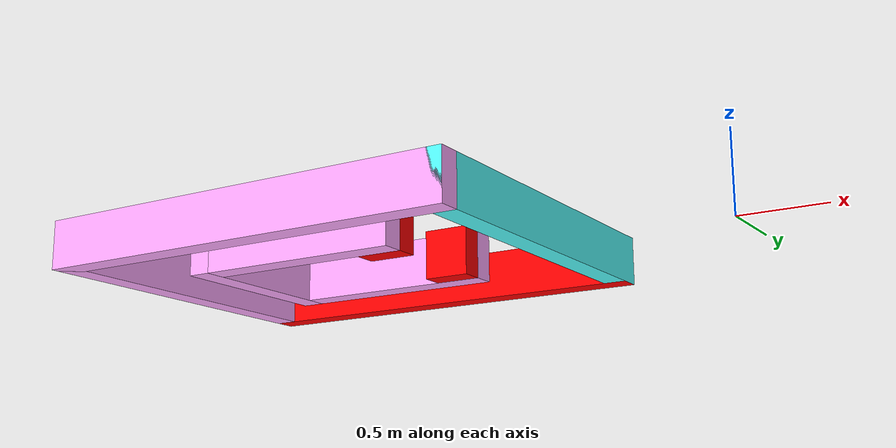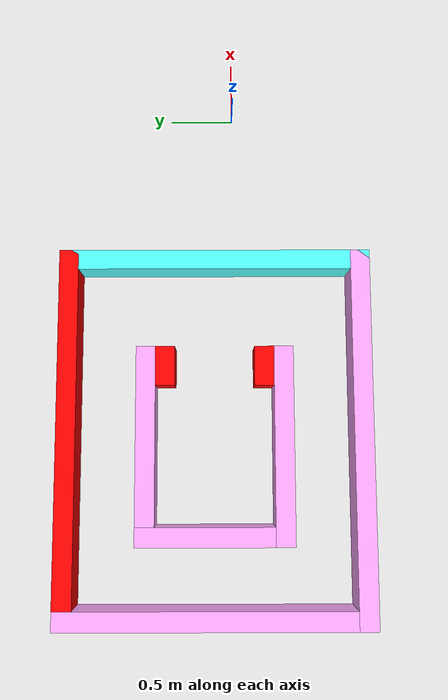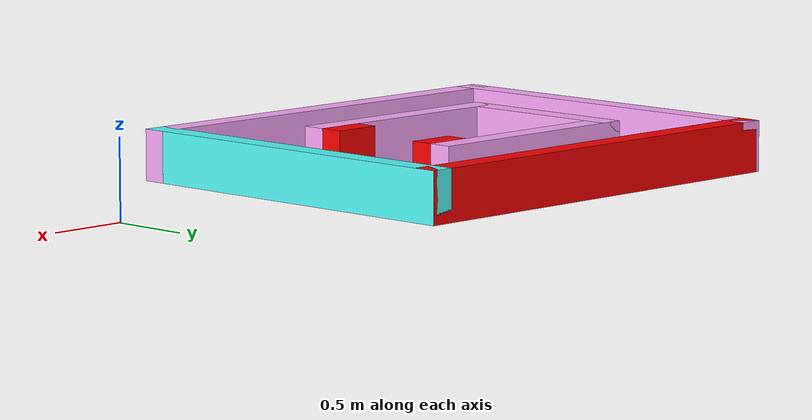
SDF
<?xml version='1.0'?>
<sdf version='1.6'>
  <model name='doll_maze'>
    <pose frame=''>-2.627 0.1445 0 0 -0 0</pose>
    <link name='Wall_0'>
      <collision name='Wall_0_Collision'>
        <geometry>
          <box>
            <size>2.896 0.15 0.32</size>
          </box>
        </geometry>
        <pose frame=''>0 0 0.16 0 -0 0</pose>
      </collision>
      <visual name='Wall_0_Visual'>
        <pose frame=''>0 0 0.16 0 -0 0</pose>
        <geometry>
          <box>
            <size>2.896 0.15 0.32</size>
          </box>
        </geometry>
        <material>
          <script>
            <uri>file://media/materials/scripts/gazebo.material</uri>
            <name>Gazebo/Grey</name>
          </script>
          <ambient>1 0.666667 1 1</ambient>
        </material>
      </visual>
      <pose frame=''>0 -1.1445 0 0 -0 0</pose>
    </link>
    <link name='Wall_11'>
      <collision name='Wall_11_Collision'>
        <geometry>
          <box>
            <size>1.524 0.15 0.32</size>
          </box>
        </geometry>
        <pose frame=''>0 0 0.16 0 -0 0</pose>
      </collision>
      <visual name='Wall_11_Visual'>
        <pose frame=''>0 0 0.16 0 -0 0</pose>
        <geometry>
          <box>
            <size>1.524 0.15 0.32</size>
          </box>
        </geometry>
        <material>
          <script>
            <uri>file://media/materials/scripts/gazebo.material</uri>
            <name>Gazebo/Grey</name>
          </script>
          <ambient>1 0.666667 1 1</ambient>
        </material>
      </visual>
      <pose frame=''>-0.076 0.5345 0 0 -0 0</pose>
    </link>
    <link name='Wall_13'>
      <collision name='Wall_13_Collision'>
        <geometry>
          <box>
            <size>1.524 0.15 0.32</size>
          </box>
        </geometry>
        <pose frame=''>0 0 0.16 0 -0 0</pose>
      </collision>
      <visual name='Wall_13_Visual'>
        <pose frame=''>0 0 0.16 0 -0 0</pose>
        <geometry>
          <box>
            <size>1.524 0.15 0.32</size>
          </box>
        </geometry>
        <material>
          <script>
            <uri>file://media/materials/scripts/gazebo.material</uri>
            <name>Gazebo/Grey</name>
          </script>
          <ambient>1 0.666667 1 1</ambient>
        </material>
      </visual>
      <pose frame=''>-0.076 -0.5345 0 0 -0 0</pose>
    </link>
    <link name='Wall_17'>
      <collision name='Wall_17_Collision'>
        <geometry>
          <box>
            <size>0.304 0.15 0.32</size>
          </box>
        </geometry>
        <pose frame=''>0 0 0.16 0 -0 0</pose>
      </collision>
      <visual name='Wall_17_Visual'>
        <pose frame=''>0 0 0.16 0 -0 0</pose>
        <geometry>
          <box>
            <size>0.304 0.15 0.32</size>
          </box>
        </geometry>
        <material>
          <script>
            <uri>file://media/materials/scripts/gazebo.material</uri>
            <name>Gazebo/Grey</name>
          </script>
          <ambient>1 0 0 1</ambient>
        </material>
      </visual>
      <pose frame=''>0.534 0.3845 0 0 -0 0</pose>
    </link>
    <link name='Wall_19'>
      <collision name='Wall_19_Collision'>
        <geometry>
          <box>
            <size>0.304 0.15 0.32</size>
          </box>
        </geometry>
        <pose frame=''>0 0 0.16 0 -0 0</pose>
      </collision>
      <visual name='Wall_19_Visual'>
        <pose frame=''>0 0 0.16 0 -0 0</pose>
        <geometry>
          <box>
            <size>0.304 0.15 0.32</size>
          </box>
        </geometry>
        <material>
          <script>
            <uri>file://media/materials/scripts/gazebo.material</uri>
            <name>Gazebo/Grey</name>
          </script>
          <ambient>1 0 0 1</ambient>
        </material>
      </visual>
      <pose frame=''>0.534 -0.3845 0 0 -0 0</pose>
    </link>
    <link name='Wall_2'>
      <collision name='Wall_2_Collision'>
        <geometry>
          <box>
            <size>2.896 0.15 0.32</size>
          </box>
        </geometry>
        <pose frame=''>0 0 0.16 0 -0 0</pose>
      </collision>
      <visual name='Wall_2_Visual'>
        <pose frame=''>0 0 0.16 0 -0 0</pose>
        <geometry>
          <box>
            <size>2.896 0.15 0.32</size>
          </box>
        </geometry>
        <material>
          <script>
            <uri>file://media/materials/scripts/gazebo.material</uri>
            <name>Gazebo/Grey</name>
          </script>
          <ambient>1 0 0 1</ambient>
        </material>
      </visual>
      <pose frame=''>0 1.1445 0 0 -0 0</pose>
    </link>
    <link name='Wall_5'>
      <collision name='Wall_5_Collision'>
        <geometry>
          <box>
            <size>2.439 0.15 0.32</size>
          </box>
        </geometry>
        <pose frame=''>0 0 0.16 0 -0 0</pose>
      </collision>
      <visual name='Wall_5_Visual'>
        <pose frame=''>0 0 0.16 0 -0 0</pose>
        <geometry>
          <box>
            <size>2.439 0.15 0.32</size>
          </box>
        </geometry>
        <material>
          <script>
            <uri>file://media/materials/scripts/gazebo.material</uri>
            <name>Gazebo/Grey</name>
          </script>
          <ambient>1 0.666667 1 1</ambient>
        </material>
      </visual>
      <pose frame=''>-1.373 0 0 0 0 -1.5708</pose>
    </link>
    <link name='Wall_7'>
      <collision name='Wall_7_Collision'>
        <geometry>
          <box>
            <size>2.439 0.15 0.32</size>
          </box>
        </geometry>
        <pose frame=''>0 0 0.16 0 -0 0</pose>
      </collision>
      <visual name='Wall_7_Visual'>
        <pose frame=''>0 0 0.16 0 -0 0</pose>
        <geometry>
          <box>
            <size>2.439 0.15 0.32</size>
          </box>
        </geometry>
        <material>
          <script>
            <uri>file://media/materials/scripts/gazebo.material</uri>
            <name>Gazebo/Grey</name>
          </script>
          <ambient>0.333333 1 1 1</ambient>
        </material>
      </visual>
      <pose frame=''>1.373 0 0 0 0 -1.5708</pose>
    </link>
    <link name='Wall_9'>
      <collision name='Wall_9_Collision'>
        <geometry>
          <box>
            <size>1.219 0.15 0.32</size>
          </box>
        </geometry>
        <pose frame=''>0 0 0.16 0 -0 0</pose>
      </collision>
      <visual name='Wall_9_Visual'>
        <pose frame=''>0 0 0.16 0 -0 0</pose>
        <geometry>
          <box>
            <size>1.219 0.15 0.32</size>
          </box>
        </geometry>
        <material>
          <script>
            <uri>file://media/materials/scripts/gazebo.material</uri>
            <name>Gazebo/Grey</name>
          </script>
          <ambient>1 0.666667 1 1</ambient>
        </material>
      </visual>
      <pose frame=''>-0.763 0 0 0 0 -1.5708</pose>
    </link>
    <static>1</static>
  </model>
</sdf>
